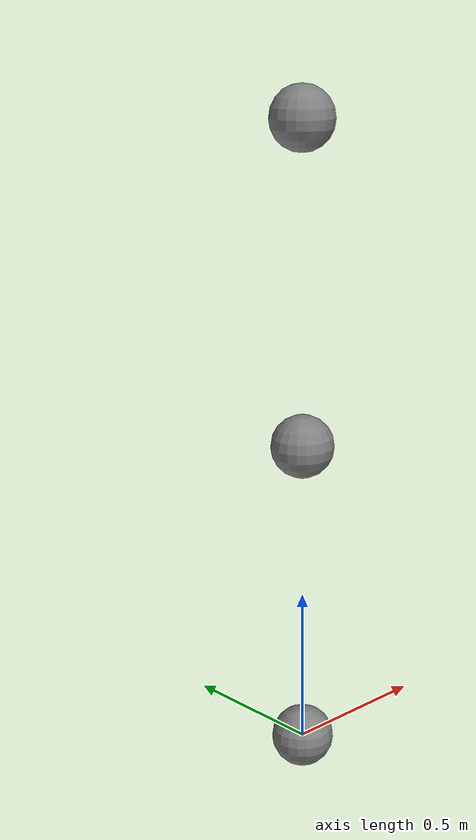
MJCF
<mujoco>
                <compiler angle="radian"/>
                <default>
                    <default class="A"><joint damping="1.0"/></default>
                    <default class="B"><joint damping="9.0"/></default>
                </default>
                <worldbody>
                    <body name="top" childclass="A">
                        <geom type="sphere" size="0.1"/>
                        <body name="mid" childclass="B" pos="0 0 1">
                            <geom type="sphere" size="0.1"/>
                            <body name="bot" pos="0 0 1">
                                <joint name="j" type="hinge"/>
                                <geom type="sphere" size="0.1"/>
                            </body>
                        </body>
                    </body>
                </worldbody>
            </mujoco>
